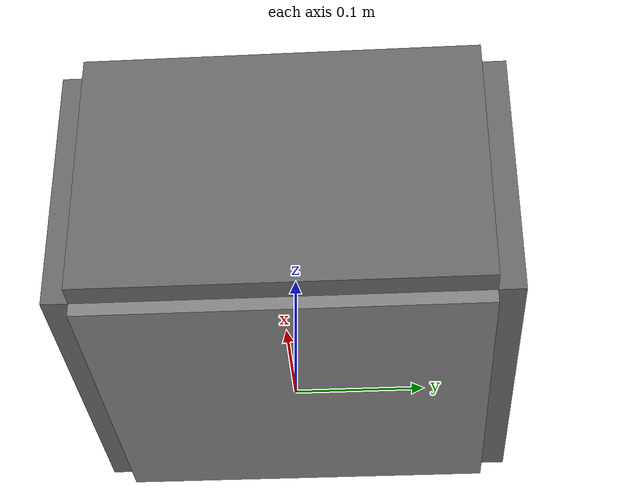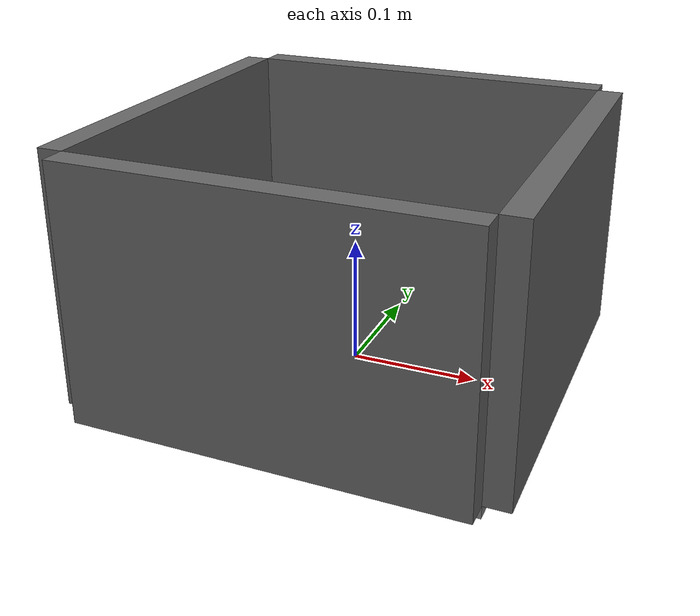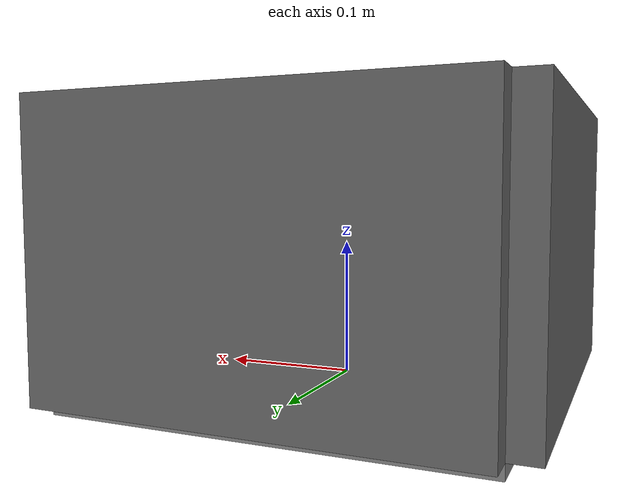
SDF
<?xml version="1.0"?>
<sdf version="1.6">
  <model name="sorting_bin">
    <static>true</static>

    <!-- Bin floor -->
    <link name="bin_floor">
      <pose>0 0 0 0 0 0</pose>
      <collision name="floor_col">
        <geometry><box><size>0.3 0.3 0.02</size></box></geometry>
      </collision>
      <visual name="floor_vis">
        <geometry><box><size>0.3 0.3 0.02</size></box></geometry>
        <material>
          <ambient>0.4 0.4 0.4 1</ambient>
          <diffuse>0.5 0.5 0.5 1</diffuse>
        </material>
      </visual>
    </link>

    <!-- Front wall -->
    <link name="front_wall">
      <pose>0.16 0 0.1 0 0 0</pose>
      <collision name="fw_col">
        <geometry><box><size>0.02 0.3 0.2</size></box></geometry>
      </collision>
      <visual name="fw_vis">
        <geometry><box><size>0.02 0.3 0.2</size></box></geometry>
        <material><ambient>0.4 0.4 0.4 1</ambient></material>
      </visual>
    </link>

    <!-- Back wall -->
    <link name="back_wall">
      <pose>-0.16 0 0.1 0 0 0</pose>
      <collision name="bw_col">
        <geometry><box><size>0.02 0.3 0.2</size></box></geometry>
      </collision>
      <visual name="bw_vis">
        <geometry><box><size>0.02 0.3 0.2</size></box></geometry>
        <material><ambient>0.4 0.4 0.4 1</ambient></material>
      </visual>
    </link>

    <!-- Left wall -->
    <link name="left_wall">
      <pose>0 0.16 0.1 0 0 0</pose>
      <collision name="lw_col">
        <geometry><box><size>0.3 0.02 0.2</size></box></geometry>
      </collision>
      <visual name="lw_vis">
        <geometry><box><size>0.3 0.02 0.2</size></box></geometry>
        <material><ambient>0.4 0.4 0.4 1</ambient></material>
      </visual>
    </link>

    <!-- Right wall -->
    <link name="right_wall">
      <pose>0 -0.16 0.1 0 0 0</pose>
      <collision name="rw_col">
        <geometry><box><size>0.3 0.02 0.2</size></box></geometry>
      </collision>
      <visual name="rw_vis">
        <geometry><box><size>0.3 0.02 0.2</size></box></geometry>
        <material><ambient>0.4 0.4 0.4 1</ambient></material>
      </visual>
    </link>
  </model>
</sdf>
